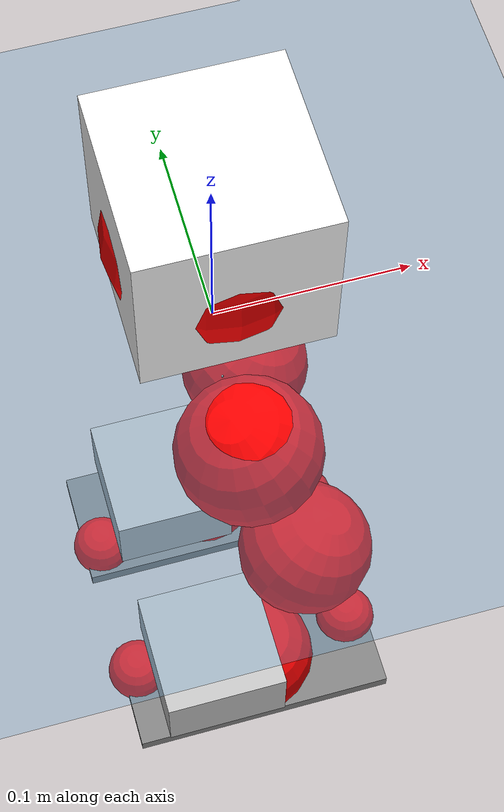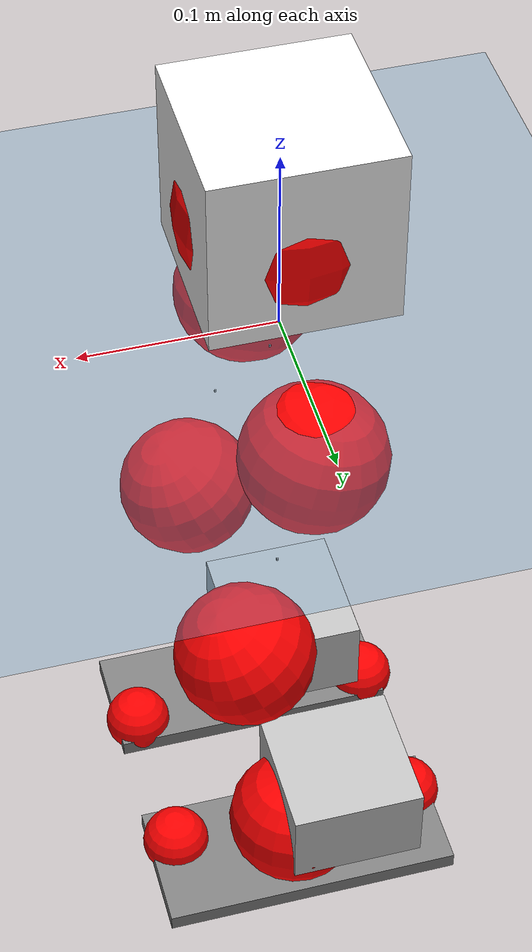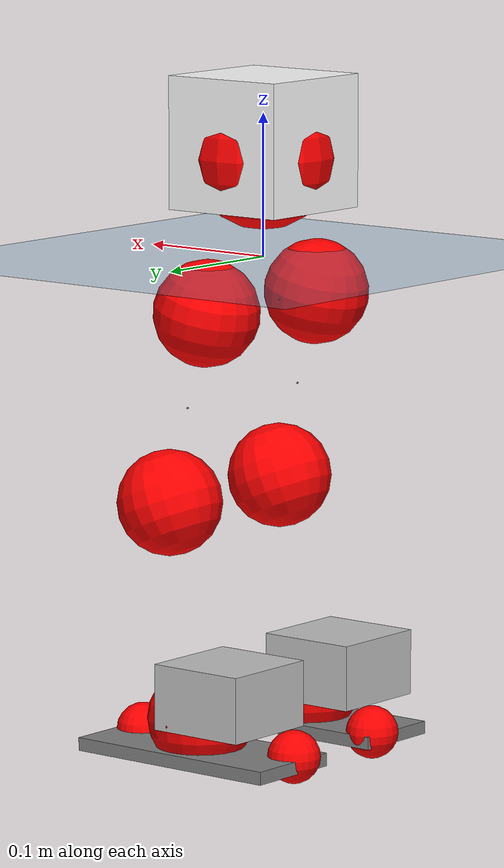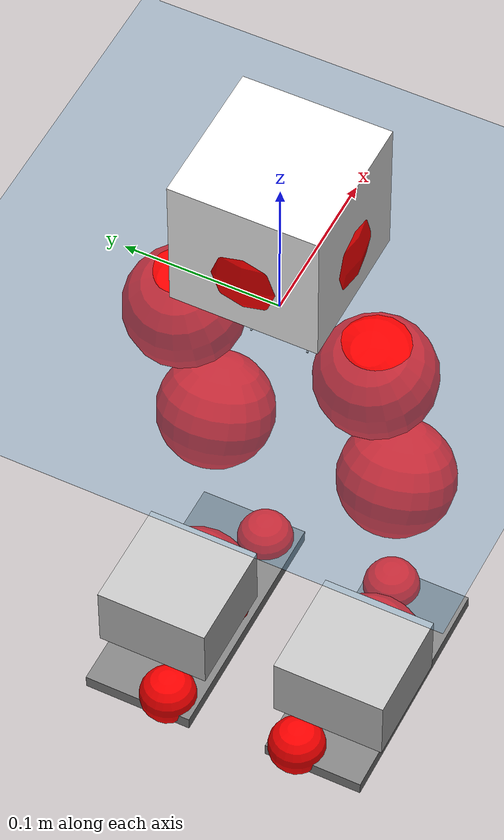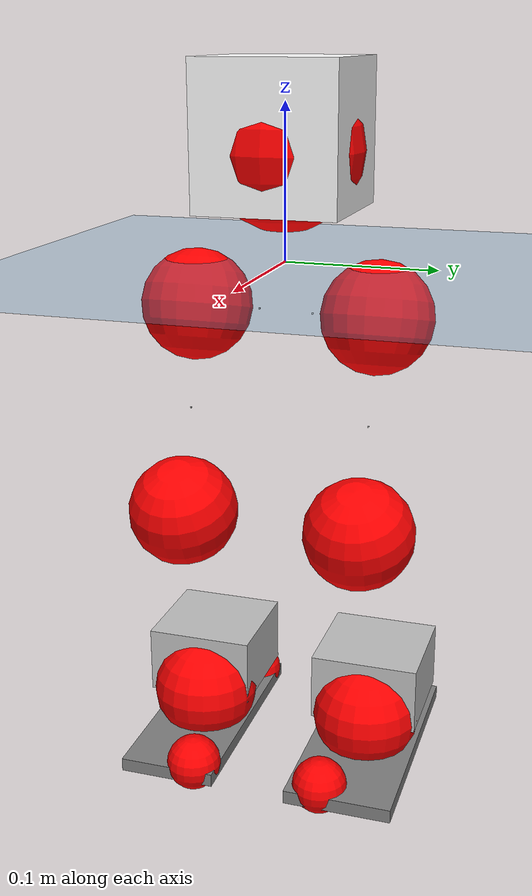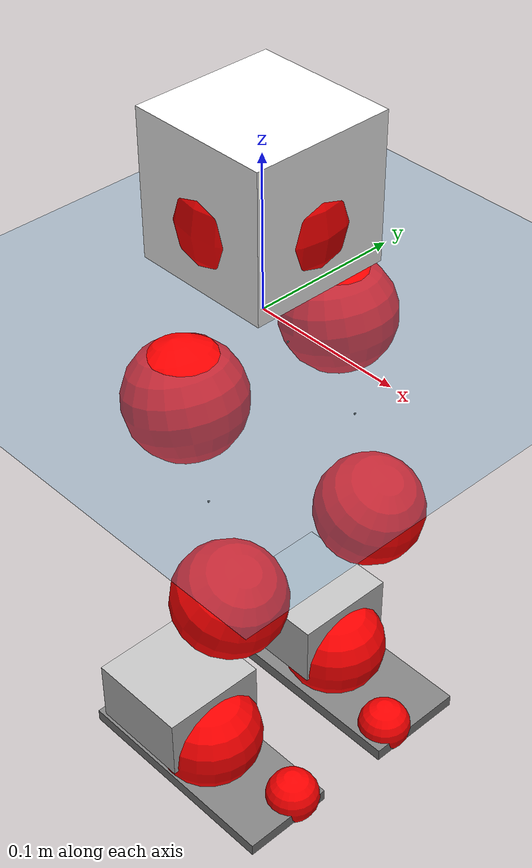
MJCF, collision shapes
<mujoco model="pi_12dof_release_v1">
  <compiler angle="radian" assetdir="assets" balanceinertia="true" inertiafromgeom="false"/>

  <option timestep="0.005" density="1.2" viscosity="2e-05"/>

  <size nkey="1"/>

  <visual>
    <quality shadowsize="8192"/>
    <map shadowclip="0.5"/>
  </visual>

  <default>
    <default class="/">
      <joint armature="0.01" damping="0.01" frictionloss="0.01"/>
      <geom contype="0" conaffinity="0" group="1" solref="-1000 -80"/>
      <site size="0.01 0.005 0.005" group="5"/>
      <general forcelimited="true" biastype="affine" gainprm="20" biasprm="0 -20 -0.5"/>
      <default class="foot">
        <geom size="0.0845 0.036 0.005" type="box" condim="6" group="4" priority="1" friction="0.9 0.2 0.2" solimp="0.015 1 0.005"/>
      </default>
      <default class="reward_collision_sphere">
        <geom group="5" rgba="1 0 0 1"/>
      </default>
    </default>
  </default>

  <asset>
    <texture type="skybox" colorspace="auto" name="//unnamed_texture_0" builtin="gradient" rgb1="0.95 0.95 0.95" rgb2="0.95 0.95 0.95" width="100" height="600"/>
    <texture type="2d" colorspace="auto" name="texplane" builtin="checker" rgb1="0.345 0.575 0.748" rgb2="0.345 0.575 0.748" markrgb="1 1 1" width="512" height="512"/>
    <material name="MatPlane" class="/" texture="texplane" texuniform="true" texrepeat="2 2" specular="0.9"/>
    <mesh name="baselink_1" class="/" file="baselink_1.STL"/>
    <mesh name="r_hip_pitch_link" class="/" file="r_hip_pitch_link.STL"/>
    <mesh name="r_hip_roll_link" class="/" file="r_hip_roll_link.STL"/>
    <mesh name="r_thigh_link" class="/" file="r_thigh_link.STL"/>
    <mesh name="r_calf_link" class="/" file="r_calf_link.STL"/>
    <mesh name="r_ankle_pitch_link" class="/" file="r_ankle_pitch_link.STL"/>
    <mesh name="r_ankle_roll_link" class="/" file="r_ankle_roll_link.STL"/>
    <mesh name="l_hip_pitch_link" class="/" file="l_hip_pitch_link.STL"/>
    <mesh name="l_hip_roll_link" class="/" file="l_hip_roll_link.STL"/>
    <mesh name="l_thigh_link" class="/" file="l_thigh_link.STL"/>
    <mesh name="l_calf_link" class="/" file="l_calf_link.STL"/>
    <mesh name="l_ankle_pitch_link" class="/" file="l_ankle_pitch_link.STL"/>
    <mesh name="l_ankle_roll_link" class="/" file="l_ankle_roll_link.STL"/>
  </asset>

  <worldbody>
    <geom name="floor" class="/" size="100 100 0.125" type="plane" group="0" material="MatPlane"/>
    <light name="toplight_shadow" class="/" pos="0 0 5" dir="0.0990148 0.0990148 -0.990148" type="directional" ambient="0.04 0.04 0.04" diffuse="0.55 0.55 0.55" specular="0.12 0.12 0.12"/>
    <light name="toplight_fill" class="/" pos="0 0 5" dir="0.0990148 0.0990148 -0.990148" type="directional" castshadow="false" ambient="0.04 0.04 0.04" diffuse="0.3 0.3 0.3" specular="0.08 0.08 0.08"/>
    <body name="trunk" pos="-0.000151978 -0.000106649 0.000305366" quat="1 3.56283e-05 0.00018037 0.000165588">
      <inertial pos="0.00241277 -0.000870802 0.0403185" quat="0.693042 0.0110205 0.0108898 0.720731" mass="1.7122" diaginertia="0.0101884 0.00251963 0.00417575"/>
      <joint name="//unnamed_joint_0" type="free"/>
      <geom name="//unnamed_geom_1" class="/" type="mesh" density="0" rgba="1 1 1 1" mesh="baselink_1"/>
      <geom name="//unnamed_geom_2" class="/" size="0.0464484 0.0464484 0.0464484" pos="0 0 0.0800001" type="box" rgba="1 1 1 1"/>
      <geom name="//unnamed_geom_3" class="reward_collision_sphere" size="0.0510933" pos="0 0 0.07"/>
      <site name="imu" class="/" pos="0.00221911 -0.000188845 -0.00203358" size="0.00928969"/>
      <camera name="track" class="/" pos="0 -1.55413 0" quat="0.707107 0.707107 0 0" mode="trackcom"/>
      <camera name="ego_camera" class="/" pos="0.0757379 0 0.18" quat="-0.5 -0.5 0.5 0.5"/>
      <body name="r_hip_pitch_link" pos="-2.41963e-05 -0.0176154 -0.0319904" quat="0.992196 -8.87085e-07 -0.124689 1.26714e-05">
        <inertial pos="0.000949769 -0.042736 2.37266e-05" quat="-0.0196177 0.705942 -0.0279533 0.707446" mass="0.294864" diaginertia="0.000113346 2.80726e-05 8.31548e-05"/>
        <joint name="r_hip_pitch_joint" class="/" pos="0 0 0" axis="-0.00119133 -0.999991 -0.00408646" range="-1.7436 1.23191" armature="0.00929916" damping="0.014204" frictionloss="0.00931557"/>
        <geom name="//unnamed_geom_4" class="/" type="mesh" density="0" rgba="0.75294 0.75294 0.75294 1" mesh="r_hip_pitch_link"/>
        <geom name="//unnamed_geom_5" class="/" size="0.000464484 0.000464484 0.000464484" type="box" rgba="0.75294 0.75294 0.75294 1"/>
        <body name="r_hip_roll_link" pos="0.0013809 -0.0433125 0.000308558" quat="1 -0.000159609 -0.000148595 -0.000263125">
          <inertial pos="-0.0013024 -0.000128012 -0.0623801" quat="0.70746 -0.0788852 -0.0836556 0.697337" mass="0.310187" diaginertia="0.000350838 7.86001e-05 0.000127979"/>
          <joint name="r_hip_roll_joint" class="/" pos="0 0 0" axis="-0.999997 0.00244337 0.000347684" range="-0.117478 0.490484" armature="0.0092738" damping="0.0116319" frictionloss="0.00967389"/>
          <geom name="//unnamed_geom_6" class="/" type="mesh" density="0" rgba="0.75294 0.75294 0.75294 1" mesh="r_hip_roll_link"/>
          <geom name="//unnamed_geom_7" class="/" size="0.000464484 0.000464484 0.000464484" type="box" rgba="0.75294 0.75294 0.75294 1"/>
          <geom name="//unnamed_geom_8" class="reward_collision_sphere" size="0.0371588"/>
          <body name="r_thigh_link" pos="-0.000334406 0.000212771 -0.069242" quat="1 0.000251095 -6.59832e-05 0.000233309">
            <inertial pos="-0.000242867 0.000387846 -0.0476128" quat="0.737185 0.675691 0.000835461 7.94718e-05" mass="0.0883875" diaginertia="0.000131008 2.64767e-05 5.76016e-05"/>
            <joint name="r_thigh_joint" class="/" pos="0 0 0" axis="-0.000726224 0.00328298 -0.999994" range="-0.318265 0.600042" armature="0.00924827" damping="0.00334131" frictionloss="0.00951269"/>
            <geom name="//unnamed_geom_9" class="/" type="mesh" density="0" rgba="0.75294 0.75294 0.75294 1" mesh="r_thigh_link"/>
            <geom name="//unnamed_geom_10" class="/" size="0.000464484 0.000464484 0.000464484" type="box" rgba="0.75294 0.75294 0.75294 1"/>
            <body name="r_calf_link" pos="-0.000750443 -0.000543959 -0.0700819" quat="0.947692 -0.000136364 0.319185 8.16817e-06">
              <inertial pos="-7.12903e-05 -0.000565154 -0.0701277" quat="0.999953 -0.00358658 -0.00139455 0.00885576" mass="0.655545" diaginertia="0.00372339 0.00100643 0.000175087"/>
              <joint name="r_calf_joint" class="/" pos="0 0 0" axis="-0.00088175 -0.999983 -0.00572595" range="-1.64519 0.647958" armature="0.00899573" damping="0.00609002" frictionloss="0.00917827"/>
              <geom name="//unnamed_geom_11" class="/" type="mesh" density="0" rgba="0.75294 0.75294 0.75294 1" mesh="r_calf_link"/>
              <geom name="//unnamed_geom_12" class="/" size="0.000464484 0.000464484 0.000464484" type="box" rgba="0.75294 0.75294 0.75294 1"/>
              <geom name="//unnamed_geom_13" class="reward_collision_sphere" size="0.0371588"/>
              <body name="r_ankle_pitch_link" pos="0.000504519 0.000764529 -0.140671" quat="0.980056 1.40672e-05 -0.198723 -5.38242e-05">
                <inertial pos="0.00559862 0.00379116 0.000299106" quat="0.0020134 0.707326 -0.00187773 0.706882" mass="0.141485" diaginertia="0.000321947 6.31809e-05 0.000120143"/>
                <joint name="r_ankle_pitch_joint" class="/" pos="0 0 0" axis="-0.00229641 -0.999993 -0.00289033" range="-1.30271 0.500513" armature="0.00945869" damping="0.00686021" frictionloss="0.00968289"/>
                <geom name="//unnamed_geom_14" class="/" type="mesh" density="0" rgba="0.75294 0.75294 0.75294 1" mesh="r_ankle_pitch_link"/>
                <geom name="//unnamed_geom_15" class="/" size="0.0362298 0.0371588 0.0232242" type="box" rgba="0.75294 0.75294 0.75294 1"/>
                <body name="r_ankle_roll_link" pos="0.0773733 0.00167255 -0.000245218" quat="1 0.000181694 -7.9174e-05 0.000261345">
                  <inertial pos="-0.0232755 0.000925268 -0.0150591" quat="0.559685 0.431084 0.435401 0.557983" mass="0.417343" diaginertia="0.00117623 0.000290355 0.000284662"/>
                  <joint name="r_ankle_roll_joint" class="/" pos="0 0 0" axis="-0.999998 -2.0628e-05 -0.0018859" range="-0.152968 0.148275" armature="0.00951166" damping="0.00766068" frictionloss="0.00920159"/>
                  <geom name="//unnamed_geom_16" class="/" type="mesh" density="0" rgba="0.75294 0.75294 0.75294 1" mesh="r_ankle_roll_link"/>
                  <geom name="//unnamed_geom_17" class="/" type="mesh" rgba="0.75294 0.75294 0.75294 1" mesh="r_ankle_roll_link"/>
                  <geom name="right_foot" class="foot" size="0.0793883 0.0328108 0.00450886" pos="-0.0515018 0 -0.044"/>
                  <geom name="//unnamed_geom_19" class="reward_collision_sphere" size="0.0371588" pos="-0.0504919 0 -0.02"/>
                  <geom name="//unnamed_geom_20" class="reward_collision_sphere" size="0.0185794" pos="0.0151476 0.0155413 -0.04"/>
                  <geom name="//unnamed_geom_21" class="reward_collision_sphere" size="0.0185794" pos="-0.121181 0.0155413 -0.04"/>
                  <site name="right_foot" class="foot" pos="-0.0515018 0 -0.044" size="0.00928969"/>
                </body>
              </body>
            </body>
          </body>
        </body>
      </body>
      <body name="l_hip_pitch_link" pos="0.000937535 0.0189459 -0.0326649" quat="0.992203 -6.73996e-05 -0.124635 -0.000119774">
        <inertial pos="0.00111524 0.0408416 -7.80973e-05" quat="-0.0378024 0.706331 0.0302903 0.706222" mass="0.315206" diaginertia="0.000134248 2.98733e-05 0.000101369"/>
        <joint name="l_hip_pitch_joint" class="/" pos="0 0 0" axis="0.00223679 0.999988 0.00435692" range="-1.24884 1.75592" armature="0.00914059" damping="0.014398" frictionloss="0.00901797"/>
        <geom name="//unnamed_geom_22" class="/" type="mesh" density="0" rgba="0.75294 0.75294 0.75294 1" mesh="l_hip_pitch_link"/>
        <geom name="//unnamed_geom_23" class="/" size="0.000464484 0.000464484 0.000464484" type="box" rgba="0.75294 0.75294 0.75294 1"/>
        <body name="l_hip_roll_link" pos="-0.000986827 0.0430649 0.00013002" quat="1 5.56857e-05 0.000175957 5.19452e-05">
          <inertial pos="-0.00133466 0.000413397 -0.0610742" quat="0.700128 -0.0718553 -0.0779498 0.706103" mass="0.310034" diaginertia="0.000350142 7.75751e-05 0.000126009"/>
          <joint name="l_hip_roll_joint" class="/" pos="0 0 0" axis="-0.999992 -0.00191012 0.00343519" range="-0.50113 0.110681" armature="0.00901709" damping="0.00875736" frictionloss="0.00967606"/>
          <geom name="//unnamed_geom_24" class="/" type="mesh" density="0" rgba="0.75294 0.75294 0.75294 1" mesh="l_hip_roll_link"/>
          <geom name="//unnamed_geom_25" class="/" size="0.000464484 0.000464484 0.000464484" type="box" rgba="0.75294 0.75294 0.75294 1"/>
          <geom name="//unnamed_geom_26" class="reward_collision_sphere" size="0.0371588"/>
          <body name="l_thigh_link" pos="0.00035155 -0.000617236 -0.0700481" quat="1 -8.56452e-05 -0.000247132 -7.39254e-05">
            <inertial pos="0.000632525 -0.00157148 -0.046767" quat="0.677268 0.735731 0.00267395 0.000971371" mass="0.0902737" diaginertia="0.000130867 2.69412e-05 5.79623e-05"/>
            <joint name="l_thigh_joint" class="/" pos="0 0 0" axis="-0.0011585 -0.00121107 -0.999999" stiffness="0.000240951" range="-0.606658 0.298512" armature="0.0092296" damping="0.00352651" frictionloss="0.00916862"/>
            <geom name="//unnamed_geom_27" class="/" type="mesh" density="0" rgba="0.75294 0.75294 0.75294 1" mesh="l_thigh_link"/>
            <geom name="//unnamed_geom_28" class="/" size="0.000464484 0.000464484 0.000464484" type="box" rgba="0.75294 0.75294 0.75294 1"/>
            <body name="l_calf_link" pos="-0.000625802 -0.000531151 -0.0703075" quat="0.947658 1.95923e-05 0.319286 5.22532e-05">
              <inertial pos="-0.000610428 0.00171896 -0.0702244" quat="0.99998 0.00274546 0.0013045 0.00556637" mass="0.649706" diaginertia="0.00364311 0.000976069 0.000171841"/>
              <joint name="l_calf_joint" class="/" pos="0 0 0" axis="-0.001414 0.999999 -0.000458123" range="-0.66735 1.65064" armature="0.00927652" damping="0.0059129" frictionloss="0.00950618"/>
              <geom name="//unnamed_geom_29" class="/" type="mesh" density="0" rgba="0.75294 0.75294 0.75294 1" mesh="l_calf_link"/>
              <geom name="//unnamed_geom_30" class="/" size="0.000464484 0.000464484 0.000464484" type="box" rgba="0.75294 0.75294 0.75294 1"/>
              <geom name="//unnamed_geom_31" class="reward_collision_sphere" size="0.0371588"/>
              <body name="l_ankle_pitch_link" pos="0.000783491 0.000807354 -0.139825" quat="0.980062 2.69317e-05 -0.19869 5.55455e-06">
                <inertial pos="0.00527491 -0.000454759 0.000425068" quat="-0.000383527 0.709511 0.0022697 0.704691" mass="0.140415" diaginertia="0.000324 6.25615e-05 0.000121256"/>
                <joint name="l_ankle_pitch_joint" class="/" pos="0 0 0" axis="0.000515524 1 -0.000113518" stiffness="0.00103624" range="-0.521866 1.28444" armature="0.00907802" damping="0.00474307" frictionloss="0.00947409"/>
                <geom name="//unnamed_geom_32" class="/" type="mesh" density="0" rgba="0.75294 0.75294 0.75294 1" mesh="l_ankle_pitch_link"/>
                <geom name="//unnamed_geom_33" class="/" size="0.0362298 0.0371588 0.0232242" type="box" rgba="0.75294 0.75294 0.75294 1"/>
                <body name="l_ankle_roll_link" pos="0.0760613 0.000130163 0.000264964" quat="1 -1.14999e-05 -0.000110552 -9.17788e-05">
                  <inertial pos="-0.0248227 -0.00129623 -0.0142609" quat="0.560233 0.429826 0.435026 0.558696" mass="0.41487" diaginertia="0.00120552 0.000291903 0.00028438"/>
                  <joint name="l_ankle_roll_joint" class="/" pos="0 0 0" axis="-0.999998 0.000760184 0.00201262" range="-0.142717 0.16998" armature="0.0093291" damping="0.00853889" frictionloss="0.00918169"/>
                  <geom name="//unnamed_geom_34" class="/" type="mesh" density="0" rgba="0.75294 0.75294 0.75294 1" mesh="l_ankle_roll_link"/>
                  <geom name="//unnamed_geom_35" class="/" type="mesh" rgba="0.75294 0.75294 0.75294 1" mesh="l_ankle_roll_link"/>
                  <geom name="left_foot" class="foot" size="0.0817604 0.0364092 0.00461933" pos="-0.0515018 0 -0.044"/>
                  <geom name="//unnamed_geom_37" class="reward_collision_sphere" size="0.0371588" pos="-0.0504919 0 -0.02"/>
                  <geom name="//unnamed_geom_38" class="reward_collision_sphere" size="0.0185794" pos="0.0151476 -0.0155413 -0.04"/>
                  <geom name="//unnamed_geom_39" class="reward_collision_sphere" size="0.0185794" pos="-0.121181 -0.0155413 -0.04"/>
                  <site name="left_foot" class="foot" pos="-0.0515018 0 -0.044" size="0.00928969"/>
                </body>
              </body>
            </body>
          </body>
        </body>
      </body>
    </body>
  </worldbody>

  <contact>
    <pair class="/" geom1="floor" geom2="right_foot" name="//unnamed_contact_1"/>
    <pair class="/" geom1="floor" geom2="left_foot" name="//unnamed_contact_0"/>
  </contact>

  <actuator>
    <general name="r_hip_pitch_joint" class="/" joint="r_hip_pitch_joint" forcerange="-19.2252 19.2252" gainprm="18.5381" biasprm="0 -18.5381 -0.46764"/>
    <general name="r_hip_roll_joint" class="/" joint="r_hip_roll_joint" forcerange="-19.5331 19.5331" gainprm="18.5381" biasprm="0 -18.5381 -0.46764"/>
    <general name="r_thigh_joint" class="/" joint="r_thigh_joint" forcerange="-19.5765 19.5765" gainprm="18.5381" biasprm="0 -18.5381 -0.46764"/>
    <general name="r_calf_joint" class="/" joint="r_calf_joint" forcerange="-19.8355 19.8355" gainprm="18.5381" biasprm="0 -18.5381 -0.46764"/>
    <general name="r_ankle_pitch_joint" class="/" joint="r_ankle_pitch_joint" forcerange="-19.1582 19.1582" gainprm="18.5381" biasprm="0 -18.5381 -0.46764"/>
    <general name="r_ankle_roll_joint" class="/" joint="r_ankle_roll_joint" forcerange="-19.7717 19.7717" gainprm="18.5381" biasprm="0 -18.5381 -0.46764"/>
    <general name="l_hip_pitch_joint" class="/" joint="l_hip_pitch_joint" forcerange="-19.5772 19.5772" gainprm="18.5381" biasprm="0 -18.5381 -0.46764"/>
    <general name="l_hip_roll_joint" class="/" joint="l_hip_roll_joint" forcerange="-19.8624 19.8624" gainprm="18.5381" biasprm="0 -18.5381 -0.46764"/>
    <general name="l_thigh_joint" class="/" joint="l_thigh_joint" forcerange="-19.273 19.273" gainprm="18.5381" biasprm="0 -18.5381 -0.46764"/>
    <general name="l_calf_joint" class="/" joint="l_calf_joint" forcerange="-19.44 19.44" gainprm="18.5381" biasprm="0 -18.5381 -0.46764"/>
    <general name="l_ankle_pitch_joint" class="/" joint="l_ankle_pitch_joint" forcerange="-19.4099 19.4099" gainprm="18.5381" biasprm="0 -18.5381 -0.46764"/>
    <general name="l_ankle_roll_joint" class="/" joint="l_ankle_roll_joint" forcerange="-18.8692 18.8692" gainprm="18.5381" biasprm="0 -18.5381 -0.46764"/>
  </actuator>

  <sensor>
    <gyro site="imu" name="imu_angular_velocity"/>
    <velocimeter site="imu" name="imu_linear_velocity"/>
    <framelinvel objtype="site" objname="left_foot" name="left_foot_global_linear_velocity"/>
    <framelinvel objtype="site" objname="right_foot" name="right_foot_global_linear_velocity"/>
  </sensor>

  <keyframe>
    <key name="home" qpos="0 0 0.291 1 0 0 0 0.4 0 0 -0.8 0.4 0 -0.4 0 0 0.8 -0.4 0"/>
  </keyframe>
</mujoco>
